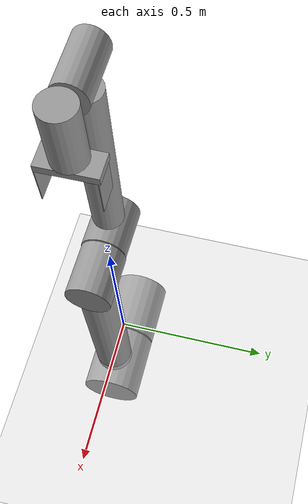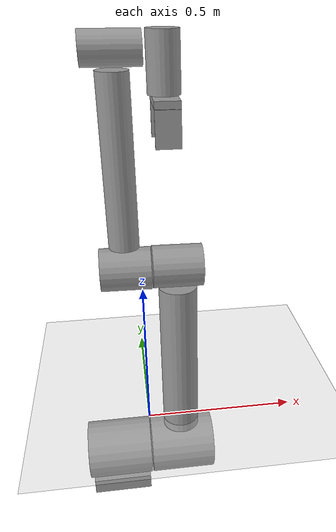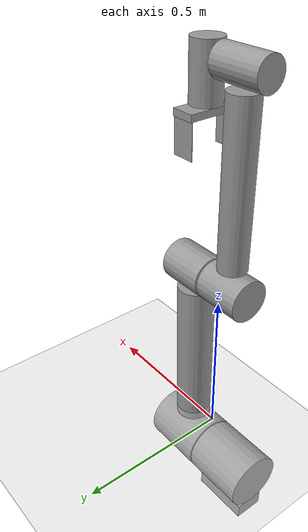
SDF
<?xml version="1.0" ?>
<sdf version="1.6">
  <world name="default">

	<!-- A global light source -->
	<include>
	  <uri>model://sun</uri>
	</include>

	<!-- A ground plane -->
	<include>
	  <uri>model://ground_plane</uri>
	</include>

  <model name='myownArm'>
<!-- LINK ELEMENTE-->

<!-- Bodenplatte -->
    <link name='Bodenplatte'>
      <pose frame=''>-0.110501 -0 -0.267273 0 -0 0</pose>
      <inertial>
        <mass>10000</mass>
        <inertia>
          <ixx>836.333</ixx>
          <ixy>0</ixy>
          <ixz>0</ixz>
          <iyy>836.333</iyy>
          <iyz>0</iyz>
          <izz>1666.67</izz>
        </inertia>
        <pose frame=''>0 0 0 0 -0 0</pose>
      </inertial>
      <self_collide>1</self_collide>
      <kinematic>0</kinematic>
      <enable_wind>0</enable_wind>
      <gravity>1</gravity>
      <visual name='visual'>
        <pose frame=''>0 0 0 0 -0 0</pose>
        <geometry>
          <box>
            <size>0.2 0.1 0.055</size>
          </box>
        </geometry>
        <material>
          <lighting>1</lighting>
          <script>
            <uri>file://media/materials/scripts/gazebo.material</uri>
            <name>Gazebo/Grey</name>
          </script>
          <shader type='vertex'>
            <normal_map>__default__</normal_map>
          </shader>
          <ambient>0.3 0.3 0.3 1</ambient>
          <diffuse>0.7 0.7 0.7 1</diffuse>
          <specular>0.01 0.01 0.01 1</specular>
          <emissive>0 0 0 1</emissive>
        </material>
        <transparency>0</transparency>
        <cast_shadows>1</cast_shadows>
      </visual>
      <collision name='collision'>
        <laser_retro>0</laser_retro>
        <max_contacts>10</max_contacts>
        <pose frame=''>0 0 0 0 -0 0</pose>
        <geometry>
          <box>
            <size>0.2 0.1 0.055</size>
          </box>
        </geometry>
        <surface>
          <friction>
            <ode>
              <mu>1</mu>
              <mu2>1</mu2>
              <fdir1>0 0 0</fdir1>
              <slip1>0</slip1>
              <slip2>0</slip2>
            </ode>
            <torsional>
              <coefficient>1</coefficient>
              <patch_radius>0</patch_radius>
              <surface_radius>0</surface_radius>
              <use_patch_radius>1</use_patch_radius>
              <ode>
                <slip>0</slip>
              </ode>
            </torsional>
          </friction>
        </surface>
      </collision>
    </link>
<!-- 1. Teil des Großen Gelenks -->
    <link name='GrossesGelenk1'>
      <pose frame=''>-0.110501 -0 -0.129742 3.13788 1.57079 3.13788</pose>
      <inertial>
        <mass>13</mass>
        <inertia>
          <ixx>1.89583</ixx>
          <ixy>0</ixy>
          <ixz>0</ixz>
          <iyy>1.89583</iyy>
          <iyz>0</iyz>
          <izz>1.625</izz>
        </inertia>
        <pose frame=''>0 0 0 0 -0 0</pose>
      </inertial>
      <self_collide>1</self_collide>
      <kinematic>0</kinematic>
      <enable_wind>0</enable_wind>
      <visual name='visual'>
        <pose frame=''>0 0 0 0 -0 0</pose>
        <geometry>
          <cylinder>
            <radius>0.0975</radius>
            <length>0.215</length>
          </cylinder>
        </geometry>
        <material>
          <lighting>1</lighting>
          <script>
            <uri>file://media/materials/scripts/gazebo.material</uri>
            <name>Gazebo/Grey</name>
          </script>
          <shader type='vertex'>
            <normal_map>__default__</normal_map>
          </shader>
          <ambient>0.3 0.3 0.3 1</ambient>
          <diffuse>0.7 0.7 0.7 1</diffuse>
          <specular>0.01 0.01 0.01 1</specular>
          <emissive>0 0 0 1</emissive>
        </material>
        <transparency>0</transparency>
        <cast_shadows>1</cast_shadows>
      </visual>
      <collision name='collision'>
        <laser_retro>0</laser_retro>
        <max_contacts>10</max_contacts>
        <pose frame=''>0 0 0 0 -0 0</pose>
        <geometry>
          <cylinder>
            <radius>0.0975</radius>
            <length>0.215</length>
          </cylinder>
        </geometry>
        <surface>
          <friction>
            <ode>
              <mu>1</mu>
              <mu2>1</mu2>
              <fdir1>0 0 0</fdir1>
              <slip1>0</slip1>
              <slip2>0</slip2>
            </ode>
            <torsional>
              <coefficient>1</coefficient>
              <patch_radius>0</patch_radius>
              <surface_radius>0</surface_radius>
              <use_patch_radius>1</use_patch_radius>
              <ode>
                <slip>0</slip>
              </ode>
            </torsional>
          </friction>
        </surface>
      </collision>
    </link>
<!-- 2. Teil des großen Gelenks-->
    <link name='GrossesGelenk2'>
      <pose frame=''>0.108856 -0 -0.129742 3.13347 1.57079 3.13347</pose>
      <inertial>
        <mass>13</mass>
        <inertia>
          <ixx>1.89583</ixx>
          <ixy>0</ixy>
          <ixz>0</ixz>
          <iyy>1.89583</iyy>
          <iyz>0</iyz>
          <izz>1.625</izz>
        </inertia>
        <pose frame=''>0 0 0 0 -0 0</pose>
      </inertial>
      <self_collide>1</self_collide>
      <kinematic>0</kinematic>
      <enable_wind>0</enable_wind>
      <visual name='visual'>
        <pose frame=''>0 0 0 0 -0 0</pose>
        <geometry>
          <cylinder>
            <radius>0.0975</radius>
            <length>0.215</length>
          </cylinder>
        </geometry>
        <material>
          <lighting>1</lighting>
          <script>
            <uri>file://media/materials/scripts/gazebo.material</uri>
            <name>Gazebo/Grey</name>
          </script>
          <shader type='vertex'>
            <normal_map>__default__</normal_map>
          </shader>
          <ambient>0.3 0.3 0.3 1</ambient>
          <diffuse>0.7 0.7 0.7 1</diffuse>
          <specular>0.01 0.01 0.01 1</specular>
          <emissive>0 0 0 1</emissive>
        </material>
        <transparency>0</transparency>
        <cast_shadows>1</cast_shadows>
      </visual>
      <collision name='collision'>
        <laser_retro>0</laser_retro>
        <max_contacts>10</max_contacts>
        <pose frame=''>0 0 0 0 -0 0</pose>
        <geometry>
          <cylinder>
            <radius>0.0975</radius>
            <length>0.215</length>
          </cylinder>
        </geometry>
        <surface>
          <friction>
            <ode>
              <mu>1</mu>
              <mu2>1</mu2>
              <fdir1>0 0 0</fdir1>
              <slip1>0</slip1>
              <slip2>0</slip2>
            </ode>
            <torsional>
              <coefficient>1</coefficient>
              <patch_radius>0</patch_radius>
              <surface_radius>0</surface_radius>
              <use_patch_radius>1</use_patch_radius>
              <ode>
                <slip>0</slip>
              </ode>
            </torsional>
          </friction>

        </surface>
      </collision>
    </link>
<!-- 1. Teil des kleinen Gelenks -->
    <link name='KleinesGelenk1'>
      <pose frame=''>-0.047148 -0.00074 1.18762 0 1.5707 0</pose>
      <inertial>
        <mass>2.754</mass>
        <inertia>
          <ixx>0.145833</ixx>
          <ixy>0</ixy>
          <ixz>0</ixz>
          <iyy>0.145833</iyy>
          <iyz>0</iyz>
          <izz>0.125</izz>
        </inertia>
        <pose frame=''>0 0 0 0 -0 0</pose>
      </inertial>
      <gravity>1</gravity>
      <self_collide>1</self_collide>
      <kinematic>0</kinematic>
      <enable_wind>0</enable_wind>
      <visual name='visual'>
        <pose frame=''>0 0 0 0 -0 0</pose>
        <geometry>
          <cylinder>
            <radius>0.045</radius>
            <length>0.158</length>
          </cylinder>
        </geometry>
        <material>
          <lighting>1</lighting>
          <script>
            <uri>file://media/materials/scripts/gazebo.material</uri>
            <name>Gazebo/Grey</name>
          </script>
          <ambient>0.3 0.3 0.3 1</ambient>
          <diffuse>0.7 0.7 0.7 1</diffuse>
          <specular>0.01 0.01 0.01 1</specular>
          <emissive>0 0 0 1</emissive>
          <shader type='vertex'>
            <normal_map>__default__</normal_map>
          </shader>
        </material>
        <cast_shadows>1</cast_shadows>
        <transparency>0</transparency>
      </visual>
      <collision name='collision'>
        <laser_retro>0</laser_retro>
        <max_contacts>10</max_contacts>
        <pose frame=''>0 0 0 0 -0 0</pose>
        <geometry>
          <cylinder>
            <radius>0.045</radius>
            <length>0.158</length>
          </cylinder>
        </geometry>
        <surface>
          <friction>
            <ode>
              <mu>1</mu>
              <mu2>1</mu2>
              <fdir1>0 0 0</fdir1>
              <slip1>0</slip1>
              <slip2>0</slip2>
            </ode>
            <torsional>
              <coefficient>1</coefficient>
              <patch_radius>0</patch_radius>
              <surface_radius>0</surface_radius>
              <use_patch_radius>1</use_patch_radius>
              <ode>
                <slip>0</slip>
              </ode>
            </torsional>
          </friction>

        </surface>
      </collision>
    </link>
<!-- 2. Teil des kleinen Gelenks -->
    <link name='KleinesGelenk2'>
      <pose frame=''>0.085 -0.00074 1.15363 0 -0 0</pose>
      <inertial>
        <mass>2.754</mass>
        <inertia>
          <ixx>0.145833</ixx>
          <ixy>0</ixy>
          <ixz>0</ixz>
          <iyy>0.145833</iyy>
          <iyz>0</iyz>
          <izz>0.125</izz>
        </inertia>
        <pose frame=''>0 0 0 0 -0 0</pose>
      </inertial>
      <self_collide>1</self_collide>
      <kinematic>0</kinematic>
      <gravity>1</gravity>
      <enable_wind>0</enable_wind>
      <visual name='visual'>
        <pose frame=''>0 0 0 0 -0 0</pose>
        <geometry>
          <cylinder>
            <radius>0.045</radius>
            <length>0.158</length>
          </cylinder>
        </geometry>
        <material>
          <lighting>1</lighting>
          <script>
            <uri>file://media/materials/scripts/gazebo.material</uri>
            <name>Gazebo/Grey</name>
          </script>
          <ambient>0.3 0.3 0.3 1</ambient>
          <diffuse>0.7 0.7 0.7 1</diffuse>
          <specular>0.01 0.01 0.01 1</specular>
          <emissive>0 0 0 1</emissive>
          <shader type='vertex'>
            <normal_map>__default__</normal_map>
          </shader>
        </material>
        <cast_shadows>1</cast_shadows>
        <transparency>0</transparency>
      </visual>
      <collision name='collision'>
        <laser_retro>0</laser_retro>
        <max_contacts>10</max_contacts>
        <pose frame=''>0 0 0 0 -0 0</pose>
        <geometry>
          <cylinder>
            <radius>0.045</radius>
            <length>0.158</length>
          </cylinder>
        </geometry>
        <surface>
          <friction>
            <ode>
              <mu>1</mu>
              <mu2>1</mu2>
              <fdir1>0 0 0</fdir1>
              <slip1>0</slip1>
              <slip2>0</slip2>
            </ode>
            <torsional>
              <coefficient>1</coefficient>
              <patch_radius>0</patch_radius>
              <surface_radius>0</surface_radius>
              <use_patch_radius>1</use_patch_radius>
              <ode>
                <slip>0</slip>
              </ode>
            </torsional>
          </friction>

        </surface>
      </collision>
    </link>
<!-- 1. Teil des Mittleren Gelenks -->
    <link name='MittleresGelenk1'>
      <pose frame=''>-0.047148 -0.00074 0.576617 3.01682 1.56535 3.00517</pose>
      <inertial>
        <mass>5.27</mass>
        <inertia>
          <ixx>1.89583</ixx>
          <ixy>0</ixy>
          <ixz>0</ixz>
          <iyy>1.89583</iyy>
          <iyz>0</iyz>
          <izz>1.625</izz>
        </inertia>
        <pose frame=''>0 0 0 0 -0 0</pose>
      </inertial>
      <self_collide>1</self_collide>
      <kinematic>0</kinematic>
      <enable_wind>0</enable_wind>
      <visual name='visual'>
        <pose frame=''>0 0 0 0 -0 0</pose>
        <geometry>
          <cylinder>
            <radius>0.065</radius>
            <length>0.152</length>
          </cylinder>
        </geometry>
        <material>
          <lighting>1</lighting>
          <script>
            <uri>file://media/materials/scripts/gazebo.material</uri>
            <name>Gazebo/Grey</name>
          </script>
          <shader type='vertex'>
            <normal_map>__default__</normal_map>
          </shader>
          <ambient>0.3 0.3 0.3 1</ambient>
          <diffuse>0.7 0.7 0.7 1</diffuse>
          <specular>0.01 0.01 0.01 1</specular>
          <emissive>0 0 0 1</emissive>
        </material>
        <transparency>0</transparency>
        <cast_shadows>1</cast_shadows>
      </visual>
      <collision name='collision'>
        <laser_retro>0</laser_retro>
        <max_contacts>10</max_contacts>
        <pose frame=''>0 0 0 0 -0 0</pose>
        <geometry>
          <cylinder>
            <radius>0.065</radius>
            <length>0.152</length>
          </cylinder>
        </geometry>
        <surface>
          <friction>
            <ode>
              <mu>1</mu>
              <mu2>1</mu2>
              <fdir1>0 0 0</fdir1>
              <slip1>0</slip1>
              <slip2>0</slip2>
            </ode>
            <torsional>
              <coefficient>1</coefficient>
              <patch_radius>0</patch_radius>
              <surface_radius>0</surface_radius>
              <use_patch_radius>1</use_patch_radius>
              <ode>
                <slip>0</slip>
              </ode>
            </torsional>
          </friction>

        </surface>
      </collision>
    </link>
<!-- 2. Teil des mittleren Gelenks -->
    <link name='MittleresGelenk2'>
      <pose frame=''>0.109117 -3.6e-05 0.576944 3.01682 1.56535 3.00517</pose>
      <inertial>
        <mass>5.27</mass>
        <inertia>
          <ixx>1.89583</ixx>
          <ixy>0</ixy>
          <ixz>0</ixz>
          <iyy>1.89583</iyy>
          <iyz>0</iyz>
          <izz>1.625</izz>
        </inertia>
        <pose frame=''>0 0 0 0 -0 0</pose>
      </inertial>
      <self_collide>1</self_collide>
      <kinematic>0</kinematic>
      <enable_wind>0</enable_wind>
      <visual name='visual'>
        <pose frame=''>0 0 0 0 -0 0</pose>
        <geometry>
          <cylinder>
            <radius>0.065</radius>
            <length>0.152</length>
          </cylinder>
        </geometry>
        <material>
          <lighting>1</lighting>
          <script>
            <uri>file://media/materials/scripts/gazebo.material</uri>
            <name>Gazebo/Grey</name>
          </script>
          <shader type='vertex'>
            <normal_map>__default__</normal_map>
          </shader>
          <ambient>0.3 0.3 0.3 1</ambient>
          <diffuse>0.7 0.7 0.7 1</diffuse>
          <specular>0.01 0.01 0.01 1</specular>
          <emissive>0 0 0 1</emissive>
        </material>
        <transparency>0</transparency>
        <cast_shadows>1</cast_shadows>
      </visual>
      <collision name='collision'>
        <laser_retro>0</laser_retro>
        <max_contacts>10</max_contacts>
        <pose frame=''>0 0 0 0 -0 0</pose>
        <geometry>
          <cylinder>
            <radius>0.065</radius>
            <length>0.152</length>
          </cylinder>
        </geometry>
        <surface>
          <friction>
            <ode>
              <mu>1</mu>
              <mu2>1</mu2>
              <fdir1>0 0 0</fdir1>
              <slip1>0</slip1>
              <slip2>0</slip2>
            </ode>
            <torsional>
              <coefficient>1</coefficient>
              <patch_radius>0</patch_radius>
              <surface_radius>0</surface_radius>
              <use_patch_radius>1</use_patch_radius>
              <ode>
                <slip>0</slip>
              </ode>
            </torsional>
          </friction>

        </surface>
      </collision>
    </link>
<!-- Das Verbindungsstück von Mittlerem und kleinem Gelenk -->
    <link name='Oberschwinge'>
      <pose frame=''>-0.047148 -0.00074 0.892871 0 -0 0</pose>
      <inertial>
        <mass>1.62</mass>
        <inertia>
          <ixx>0.0329037</ixx>
          <ixy>0</ixy>
          <ixz>0</ixz>
          <iyy>0.0329037</iyy>
          <iyz>0</iyz>
          <izz>0.00164025</izz>
        </inertia>
        <pose frame=''>0 0 0 0 -0 0</pose>
      </inertial>
      <self_collide>1</self_collide>
      <kinematic>0</kinematic>
      <enable_wind>0</enable_wind>
      <visual name='visual'>
        <pose frame=''>0 0 0 0 -0 0</pose>
        <geometry>
          <cylinder>
            <radius>0.045</radius>
            <length>0.4875</length>
          </cylinder>
        </geometry>
        <material>
          <lighting>1</lighting>
          <script>
            <uri>file://media/materials/scripts/gazebo.material</uri>
            <name>Gazebo/Grey</name>
          </script>
          <shader type='vertex'>
            <normal_map>__default__</normal_map>
          </shader>
          <ambient>0.3 0.3 0.3 1</ambient>
          <diffuse>0.7 0.7 0.7 1</diffuse>
          <specular>0.01 0.01 0.01 1</specular>
          <emissive>0 0 0 1</emissive>
        </material>
        <transparency>0</transparency>
        <cast_shadows>1</cast_shadows>
      </visual>
      <collision name='collision'>
        <laser_retro>0</laser_retro>
        <max_contacts>10</max_contacts>
        <pose frame=''>0 0 0 0 -0 0</pose>
        <geometry>
          <cylinder>
            <radius>0.045</radius>
            <length>0.4875</length>
          </cylinder>
        </geometry>
        <surface>
          <friction>
            <ode>
              <mu>1</mu>
              <mu2>1</mu2>
              <fdir1>0 0 0</fdir1>
              <slip1>0</slip1>
              <slip2>0</slip2>
            </ode>
            <torsional>
              <coefficient>1</coefficient>
              <patch_radius>0</patch_radius>
              <surface_radius>0</surface_radius>
              <use_patch_radius>1</use_patch_radius>
              <ode>
                <slip>0</slip>
              </ode>
            </torsional>
          </friction>

        </surface>
      </collision>
    </link>
<!-- Das Verbindungsstück von Großem und Mittlerem Gelenk -->
    <link name='Unterschwinge'>
      <pose frame=''>0.108856 -0.005839 0.239161 0 -0 0</pose>
      <inertial>
        <mass>3.395</mass>
        <inertia>
          <ixx>0.495104</ixx>
          <ixy>0</ixy>
          <ixz>0</ixz>
          <iyy>0.495104</iyy>
          <iyz>0</iyz>
          <izz>0.424375</izz>
        </inertia>
        <pose frame=''>0 0 0 0 -0 0</pose>
      </inertial>
      <self_collide>1</self_collide>
      <kinematic>0</kinematic>
      <enable_wind>0</enable_wind>
      <visual name='visual'>
        <pose frame=''>0 0 0 0 -0 0</pose>
        <geometry>
          <cylinder>
            <radius>0.06</radius>
            <length>0.542</length>
          </cylinder>
        </geometry>
        <material>
          <lighting>1</lighting>
          <script>
            <uri>file://media/materials/scripts/gazebo.material</uri>
            <name>Gazebo/Grey</name>
          </script>
          <shader type='vertex'>
            <normal_map>__default__</normal_map>
          </shader>
          <ambient>0.3 0.3 0.3 1</ambient>
          <diffuse>0.7 0.7 0.7 1</diffuse>
          <specular>0.01 0.01 0.01 1</specular>
          <emissive>0 0 0 1</emissive>
        </material>
        <transparency>0</transparency>
        <cast_shadows>1</cast_shadows>
      </visual>
      <collision name='collision'>
        <laser_retro>0</laser_retro>
        <max_contacts>10</max_contacts>
        <pose frame=''>0 0 0 0 -0 0</pose>
        <geometry>
          <cylinder>
            <radius>0.06</radius>
            <length>0.542</length>
          </cylinder>
        </geometry>
        <surface>
          <friction>
            <ode>
              <mu>1</mu>
              <mu2>1</mu2>
              <fdir1>0 0 0</fdir1>
              <slip1>0</slip1>
              <slip2>0</slip2>
            </ode>
            <torsional>
              <coefficient>1</coefficient>
              <patch_radius>0</patch_radius>
              <surface_radius>0</surface_radius>
              <use_patch_radius>1</use_patch_radius>
              <ode>
                <slip>0</slip>
              </ode>
            </torsional>
          </friction>

        </surface>
      </collision>
    </link>
<!-- Gripper  -->
 <!-- Hand -->
<link name='palm'>
      <inertial>
        <mass>0.5</mass>
        <inertia>
          <ixx>0.00095417</ixx>
          <ixy>0</ixy>
          <ixz>0</ixz>
          <iyy>0.00022083</iyy>
          <iyz>0</iyz>
          <izz>0.00114167</izz>
        </inertia>
        <pose frame=''>0 0 0 0 -0 0</pose>
      </inertial>
      <pose frame=''>0.086675 -0 1.06 0 -0 0</pose>
      <gravity>1</gravity>
      <self_collide>0</self_collide>
      <kinematic>0</kinematic>
      <enable_wind>0</enable_wind>
      <visual name='visual'>
        <pose frame=''>0 0 0 0 -0 0</pose>
        <geometry>
          <box>
            <size>0.07 0.15 0.02</size>
          </box>
        </geometry>
        <material>
          <lighting>1</lighting>
          <script>
            <uri>file://media/materials/scripts/gazebo.material</uri>
            <name>Gazebo/Grey</name>
          </script>
          <shader type='vertex'>
            <normal_map>__default__</normal_map>
          </shader>
          <ambient>0.3 0.3 0.3 1</ambient>
          <diffuse>0.7 0.7 0.7 1</diffuse>
          <specular>0.01 0.01 0.01 1</specular>
          <emissive>0 0 0 1</emissive>
        </material>
        <transparency>0</transparency>
        <cast_shadows>1</cast_shadows>
      </visual>
      <collision name='collision'>
        <laser_retro>0</laser_retro>
        <max_contacts>10</max_contacts>
        <pose frame=''>0 0 0 0 -0 0</pose>
        <geometry>
          <box>
            <size>0.07 0.15 0.02</size>
          </box>
        </geometry>
      </collision>
    </link>
<!-- Unbeweglicher Finger -->
    <link name='left_finger'>
      <inertial>
        <mass>0.25</mass>
        <inertia>
          <ixx>0.00083542</ixx>
          <ixy>0</ixy>
          <ixz>0</ixz>
          <iyy>0.00118542</iyy>
          <iyz>0</iyz>
          <izz>0.00035417</izz>
        </inertia>
        <pose frame=''>0 0 0 0 -0 0</pose>
      </inertial>
      <pose frame=''>0.086675 -0.074 0.999 0 -0 0</pose>
      <gravity>1</gravity>
      <self_collide>1</self_collide>
      <kinematic>0</kinematic>
      <enable_wind>0</enable_wind>
      <visual name='visual'>
        <pose frame=''>0 0 0 0 -0 0</pose>
        <geometry>
          <box>
            <size>0.07 0.002 0.1</size>
          </box>
        </geometry>
        <material>
          <lighting>1</lighting>
          <script>
            <uri>file://media/materials/scripts/gazebo.material</uri>
            <name>Gazebo/Grey</name>
          </script>
          <shader type='vertex'>
            <normal_map>__default__</normal_map>
          </shader>
          <ambient>0.3 0.3 0.3 1</ambient>
          <diffuse>0.7 0.7 0.7 1</diffuse>
          <specular>0.01 0.01 0.01 1</specular>
          <emissive>0 0 0 1</emissive>
        </material>
        <transparency>0</transparency>
        <cast_shadows>1</cast_shadows>
      </visual>
      <collision name='collision'>
        <laser_retro>0</laser_retro>
        <max_contacts>10</max_contacts>
        <pose frame=''>0 0 0 0 -0 0</pose>
        <geometry>
          <box>
            <size>0.07 0.002 0.1</size>
          </box>
        </geometry>
        <surface>
          <friction>
            <ode>
              <mu>1</mu>
              <mu2>1</mu2>
              <fdir1>0 0 0</fdir1>
              <slip1>0</slip1>
              <slip2>0</slip2>
            </ode>
            <torsional>
              <coefficient>1</coefficient>
              <patch_radius>0</patch_radius>
              <surface_radius>0</surface_radius>
              <use_patch_radius>1</use_patch_radius>
              <ode>
                <slip>0</slip>
              </ode>
            </torsional>
          </friction>
          <bounce>
            <restitution_coefficient>0</restitution_coefficient>
            <threshold>1e+06</threshold>
          </bounce>
          <contact>
            <collide_without_contact>0</collide_without_contact>
            <collide_without_contact_bitmask>1</collide_without_contact_bitmask>
            <collide_bitmask>1</collide_bitmask>
            <ode>
              <soft_cfm>0</soft_cfm>
              <soft_erp>0.2</soft_erp>
              <kp>1e+13</kp>
              <kd>1</kd>
              <max_vel>0.01</max_vel>
              <min_depth>0</min_depth>
            </ode>
            <bullet>
              <split_impulse>1</split_impulse>
              <split_impulse_penetration_threshold>-0.01</split_impulse_penetration_threshold>
              <soft_cfm>0</soft_cfm>
              <soft_erp>0.2</soft_erp>
              <kp>1e+13</kp>
              <kd>1</kd>
            </bullet>
          </contact>
        </surface>
      </collision>
    </link>
<!-- beweglicher Finger -->
    <link name='right_finger'>
      <inertial>
        <mass>0.25</mass>
        <inertia>
          <ixx>0.00083542</ixx>
          <ixy>0</ixy>
          <ixz>0</ixz>
          <iyy>0.00118542</iyy>
          <iyz>0</iyz>
          <izz>0.00035417</izz>
        </inertia>
        <pose frame=''>0 0 0 0 -0 0</pose>
      </inertial>
      <pose frame=''>0.086675 0.07 0.999 0 -0 0</pose>
      <gravity>1</gravity>
      <self_collide>1</self_collide>
      <kinematic>0</kinematic>
      <enable_wind>0</enable_wind>
      <visual name='visual'>
        <pose frame=''>0 0 0 0 -0 0</pose>
        <geometry>
          <box>
            <size>0.07 0.002 0.1</size>
          </box>
        </geometry>
        <material>
          <lighting>1</lighting>
          <script>
            <uri>file://media/materials/scripts/gazebo.material</uri>
            <name>Gazebo/Grey</name>
          </script>
          <shader type='vertex'>
            <normal_map>__default__</normal_map>
          </shader>
          <ambient>0.3 0.3 0.3 1</ambient>
          <diffuse>0.7 0.7 0.7 1</diffuse>
          <specular>0.01 0.01 0.01 1</specular>
          <emissive>0 0 0 1</emissive>
        </material>
        <transparency>0</transparency>
        <cast_shadows>1</cast_shadows>
      </visual>
      <collision name='collision'>
        <laser_retro>0</laser_retro>
        <max_contacts>10</max_contacts>
        <pose frame=''>0 0 0 0 -0 0</pose>
        <geometry>
          <box>
            <size>0.07 0.002 0.1</size>
          </box>
        </geometry>
        <surface>
          <friction>
            <ode>
              <mu>1</mu>
              <mu2>1</mu2>
              <fdir1>0 0 0</fdir1>
              <slip1>0</slip1>
              <slip2>0</slip2>
            </ode>
            <torsional>
              <coefficient>1</coefficient>
              <patch_radius>0</patch_radius>
              <surface_radius>0</surface_radius>
              <use_patch_radius>1</use_patch_radius>
              <ode>
                <slip>0</slip>
              </ode>
            </torsional>
          </friction>
          <bounce>
            <restitution_coefficient>0</restitution_coefficient>
            <threshold>1e+06</threshold>
          </bounce>
          <contact>
            <collide_without_contact>0</collide_without_contact>
            <collide_without_contact_bitmask>1</collide_without_contact_bitmask>
            <collide_bitmask>1</collide_bitmask>
            <ode>
              <soft_cfm>0</soft_cfm>
              <soft_erp>0.2</soft_erp>
              <kp>1e+13</kp>
              <kd>1</kd>
              <max_vel>0.01</max_vel>
              <min_depth>0</min_depth>
            </ode>
            <bullet>
              <split_impulse>1</split_impulse>
              <split_impulse_penetration_threshold>-0.01</split_impulse_penetration_threshold>
              <soft_cfm>0</soft_cfm>
              <soft_erp>0.2</soft_erp>
              <kp>1e+13</kp>
              <kd>1</kd>
            </bullet>
          </contact>
        </surface>
      </collision>
    </link>

<!-- JOINT ELEMENTE-->

<!-- (horizontal) rotierende Verbindung von grossem Gelenk und Bodenplatte -->
    <joint name='Gross_Bodenplatte' type='revolute'>
      <parent>Bodenplatte</parent>
      <child>GrossesGelenk1</child>
      <pose frame=''>0 0 0 3.14159 -1.57079 3.14159</pose>
      <axis>
        <xyz>0 0 1</xyz>
        <use_parent_model_frame>0</use_parent_model_frame>
        <limit>
          <lower>-1.79769e+308</lower>
          <upper>1.79769e+308</upper>
          <effort>-1</effort>
          <velocity>-1</velocity>
        </limit>
        <dynamics>
          <spring_reference>0</spring_reference>
          <spring_stiffness>0</spring_stiffness>
          <damping>150</damping>
          <friction>50</friction>
        </dynamics>
      </axis>
      <physics>
        <ode>
          <limit>
            <cfm>0</cfm>
            <erp>0.2</erp>
          </limit>
          <suspension>
            <cfm>0</cfm>
            <erp>0.2</erp>
          </suspension>
        </ode>
      </physics>
    </joint>
<!-- feste Verbindung von grossem Gelenk und Unterschwinge-->
    <joint name='Gross_Unterschwinge' type='fixed'>
      <parent>GrossesGelenk2</parent>
      <child>Unterschwinge</child>
      <pose frame=''>0 0 0 0 -0 0</pose>
      <physics>
        <ode>
          <limit>
            <cfm>0</cfm>
            <erp>0.2</erp>
          </limit>
          <suspension>
            <cfm>0</cfm>
            <erp>0.2</erp>
          </suspension>
        </ode>
      </physics>
    </joint>
<!-- (Vertikal) rotierende Verbindung innerhalb des grossen Gelenks -->
    <joint name='GrossesGelenkLink' type='revolute'>
      <parent>GrossesGelenk1</parent>
      <child>GrossesGelenk2</child>
      <pose frame=''>0 0 0 3.14159 -1.57079 3.14159</pose>
      <axis>
        <xyz>1 0 0</xyz>
        <use_parent_model_frame>0</use_parent_model_frame>
        <limit>
          <lower>-1.79769e+308</lower>
          <upper>1.79769e+308</upper>
          <effort>-1</effort>
          <velocity>-1</velocity>
        </limit>
        <dynamics>
          <spring_reference>0</spring_reference>
          <spring_stiffness>0</spring_stiffness>
          <damping>150</damping>
          <friction>100</friction>
        </dynamics>
      </axis>
      <physics>
        <ode>
          <limit>
            <cfm>0</cfm>
            <erp>0.2</erp>
          </limit>
          <suspension>
            <cfm>0</cfm>
            <erp>0.2</erp>
          </suspension>
        </ode>
      </physics>
    </joint>
<!-- (Vertikal) rotierende Verbindung innerhalb des kleinen Gelenks -->
    <joint name='KleinesGelenkLink' type='revolute'>
      <parent>KleinesGelenk1</parent>
      <child>KleinesGelenk2</child>
      <pose frame=''>-0.048 0 0.03 0 -0 0</pose>
      <axis>
        <xyz>1 0 0</xyz>
        <use_parent_model_frame>0</use_parent_model_frame>
        <limit>
          <lower>-1.79769e+308</lower>
          <upper>1.79769e+308</upper>
          <effort>-1</effort>
          <velocity>-1</velocity>
        </limit>
        <dynamics>
          <spring_reference>0</spring_reference>
          <spring_stiffness>0</spring_stiffness>
          <damping>40</damping>
          <friction>10</friction>
        </dynamics>
      </axis>
      <physics>
        <ode>
          <limit>
            <cfm>0</cfm>
            <erp>0.2</erp>
          </limit>
          <suspension>
            <cfm>0</cfm>
            <erp>0.2</erp>
          </suspension>
        </ode>
      </physics>
    </joint>
<!-- (horizontal) rotierende Verbindung zwischen mittlerem Gelenk und Oberschwinge -->
    <joint name='Mittel_Oberschwinge' type='revolute'>
      <parent>MittleresGelenk1</parent>
      <child>Oberschwinge</child>
      <pose frame=''>0 0 0 0 -0 0</pose>
      <axis>
        <xyz>0 0 1</xyz>
        <use_parent_model_frame>0</use_parent_model_frame>
        <limit>
          <lower>-1.79769e+308</lower>
          <upper>1.79769e+308</upper>
          <effort>-1</effort>
          <velocity>-1</velocity>
        </limit>
        <dynamics>
          <spring_reference>0</spring_reference>
          <spring_stiffness>0</spring_stiffness>
          <damping>100</damping>
          <friction>40</friction>
        </dynamics>
      </axis>
      <physics>
        <ode>
          <limit>
            <cfm>0</cfm>
            <erp>0.2</erp>
          </limit>
          <suspension>
            <cfm>0</cfm>
            <erp>0.2</erp>
          </suspension>
        </ode>
      </physics>
    </joint>
<!-- (Vertikal) rotierende Verbindung innerhalb des mittleren Gelenks -->
    <joint name='MittleresGelenkLink' type='revolute'>
      <parent>MittleresGelenk1</parent>
      <child>MittleresGelenk2</child>
      <pose frame=''>0 0 0 3.14159 -1.57079 3.14159</pose>
      <axis>
        <xyz>1 0 0</xyz>
        <use_parent_model_frame>0</use_parent_model_frame>
        <limit>
          <lower>-1.79769e+308</lower>
          <upper>1.79769e+308</upper>
          <effort>-1</effort>
          <velocity>-1</velocity>
        </limit>
        <dynamics>
          <spring_reference>0</spring_reference>
          <spring_stiffness>0</spring_stiffness>
          <damping>180</damping>
          <friction>70</friction>
        </dynamics>
      </axis>
      <physics>
        <ode>
          <limit>
            <cfm>0</cfm>
            <erp>0.2</erp>
          </limit>
          <suspension>
            <cfm>0</cfm>
            <erp>0.2</erp>
          </suspension>
        </ode>
      </physics>
    </joint>
<!-- feste Verbindung von Oberschwinge mit kleinem Gelenk -->
    <joint name='Oberschwinge_KleinesGelenk' type='fixed'>
      <parent>Oberschwinge</parent>
      <child>KleinesGelenk1</child>
      <pose frame=''>0 0 0 0 -0 0</pose>
      <physics>
        <ode>
          <limit>
            <cfm>0</cfm>
            <erp>0.2</erp>
          </limit>
          <suspension>
            <cfm>0</cfm>
            <erp>0.2</erp>
          </suspension>
        </ode>
      </physics>
    </joint>
<!-- feste Verbindung von Unterschwinge mit mittlerem Gelenk -->
    <joint name='Unterschwinge_Mittel' type='fixed'>
      <parent>Unterschwinge</parent>
      <child>MittleresGelenk2</child>
      <pose frame=''>0 0 0 0 -0 0</pose>
      <physics>
        <ode>
          <limit>
            <cfm>0</cfm>
            <erp>0.2</erp>
          </limit>
          <suspension>
            <cfm>0</cfm>
            <erp>0.2</erp>
          </suspension>
        </ode>
      </physics>
    </joint>
<!-- feste Verbindung von Finger und Hand -->
    <joint name='Finger_Hand' type='fixed'>
      <parent>palm</parent>
      <child>Left</child>
      <pose frame=''>0 0 0 0 -0 0</pose>
      <physics>
        <ode>
          <limit>
            <cfm>0</cfm>
            <erp>0.2</erp>
          </limit>
          <suspension>
            <cfm>0</cfm>
            <erp>0.2</erp>
          </suspension>
        </ode>
      </physics>
    </joint>
<!-- feste Verbindung von Hand und Kleinem Gelenk -->
    <joint name='KleinesGelenk_Hand' type='fixed'>
      <parent>KleinesGelenk2</parent>
      <child>palm</child>
      <pose frame=''>0 0 0 0 -0 0</pose>
      <physics>
        <ode>
          <limit>
            <cfm>0</cfm>
            <erp>0.2</erp>
          </limit>
          <suspension>
            <cfm>0</cfm>
            <erp>0.2</erp>
          </suspension>
        </ode>
      </physics>
    </joint>
<!-- feste Verbindung von linkem Finger und Hand -->
    <joint name='Hand_LinkerFinger' type='fixed'>
      <parent>palm</parent>
      <child>left_finger</child>
      <pose frame=''>0 0 0 0 -0 0</pose>
      <physics>
        <ode>
          <limit>
            <cfm>0</cfm>
            <erp>0.2</erp>
          </limit>
          <suspension>
            <cfm>0</cfm>
            <erp>0.2</erp>
          </suspension>
        </ode>
      </physics>
    </joint>
<!-- bewegliches Gelenk (Schiene) zw. Finger und Hand -->
    <joint name='Hand_RechterFinger' type='prismatic'>
      <parent>palm</parent>
      <child>right_finger</child>
      <pose frame=''>0 0 0 0 -0 0</pose>
      <axis>
        <xyz>0 -1 0</xyz>
        <use_parent_model_frame>0</use_parent_model_frame>
        <limit>
          <lower>0</lower>
          <upper>0.13</upper>
          <effort>-1</effort>
          <velocity>-1</velocity>
        </limit>
        <dynamics>
          <spring_reference>0</spring_reference>
          <spring_stiffness>0</spring_stiffness>
          <damping>0</damping>
          <friction>1</friction>
        </dynamics>
      </axis>
      <physics>
        <ode>
          <limit>
            <cfm>0</cfm>
            <erp>0.2</erp>
          </limit>
          <suspension>
            <cfm>0</cfm>
            <erp>0.2</erp>
          </suspension>
        </ode>
      </physics>
    </joint>

    <static>0</static>
    <allow_auto_disable>1</allow_auto_disable>

<!-- Einbinden des Plugins zur Kontrolle des Arms -->
    <plugin name='myarm_plugin' filename='libmyarm_plugin.so'/>
  </model>
  </world>
</sdf>
